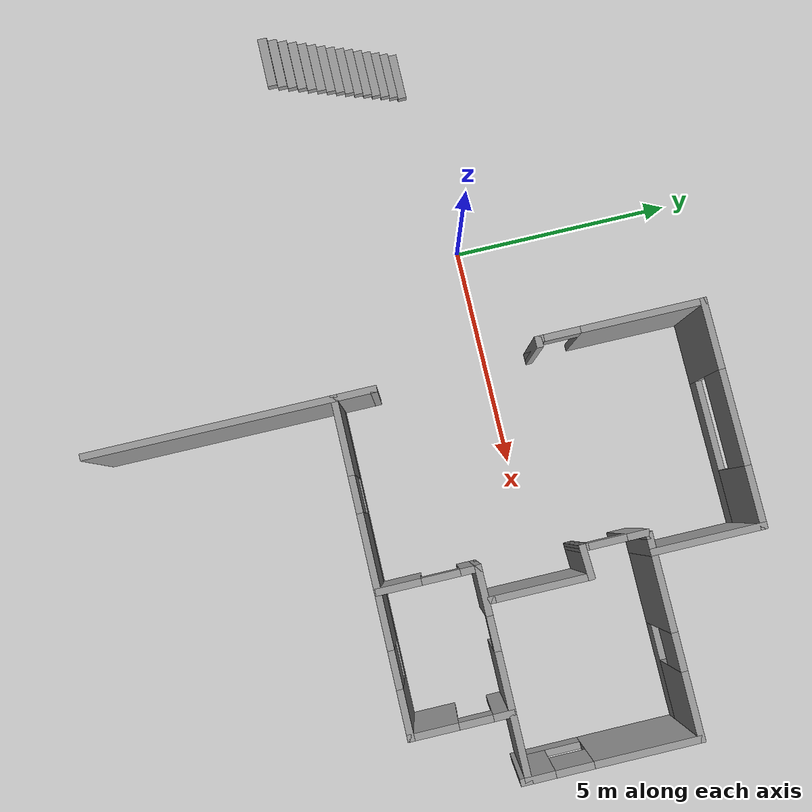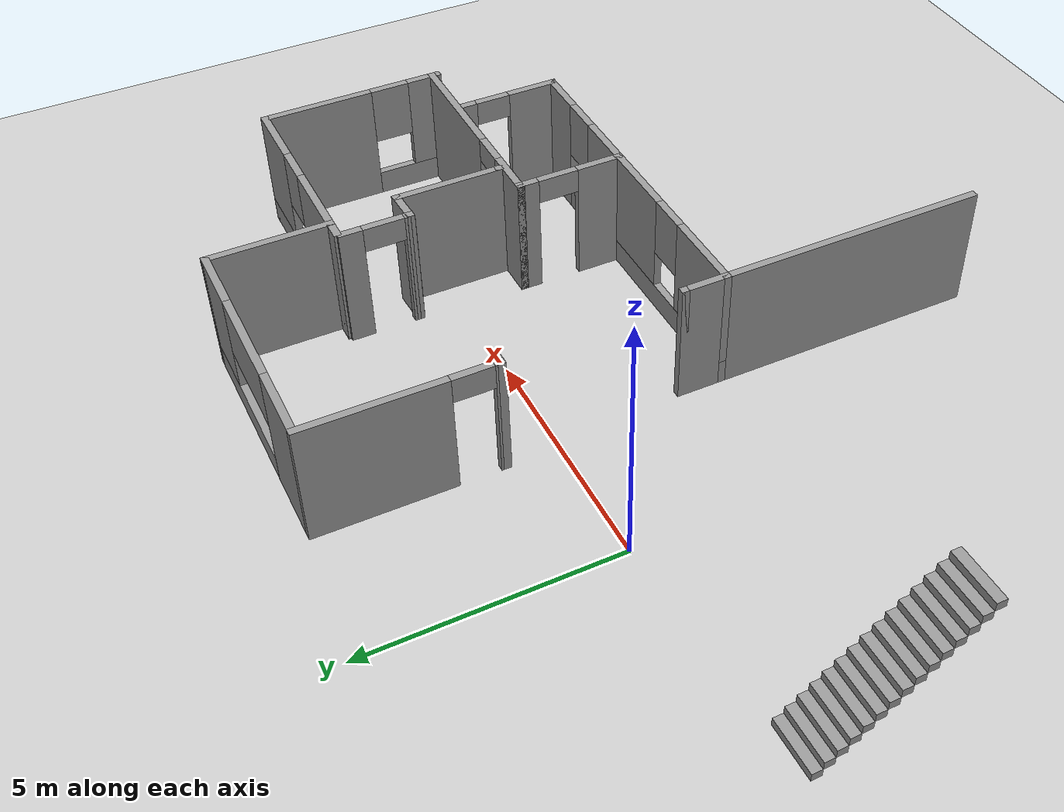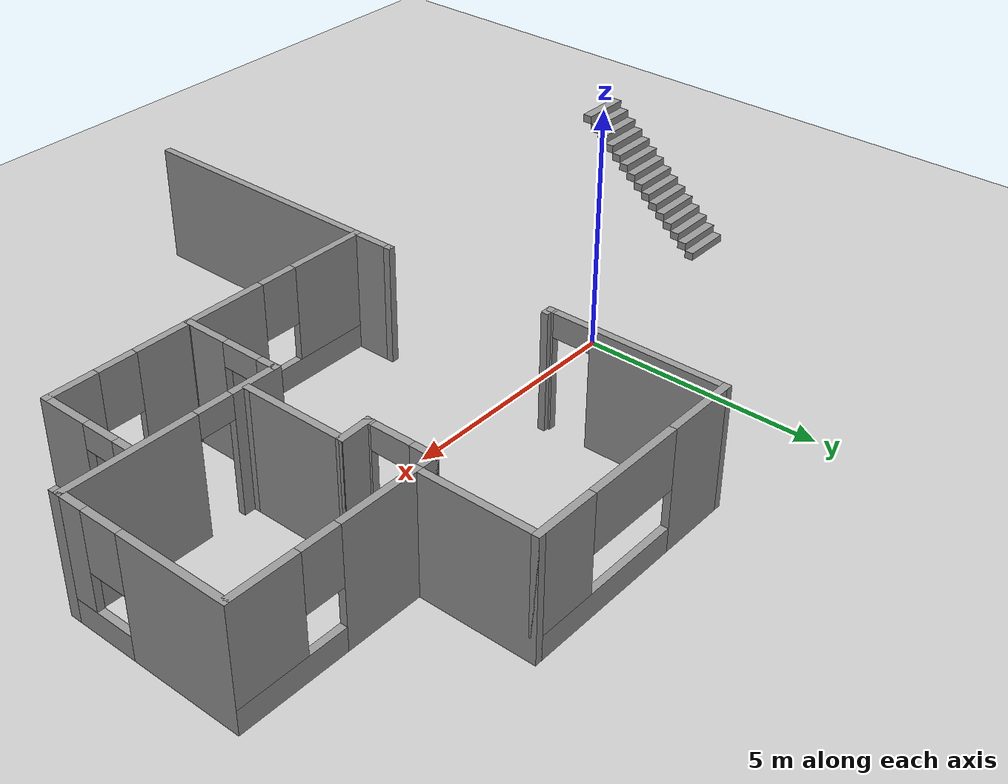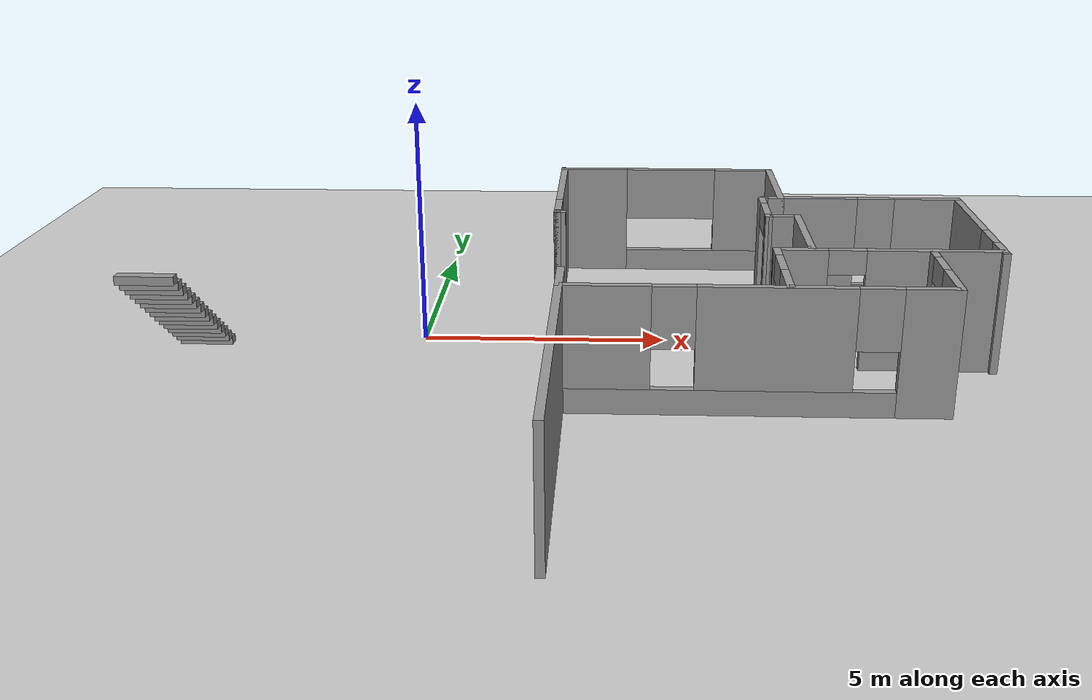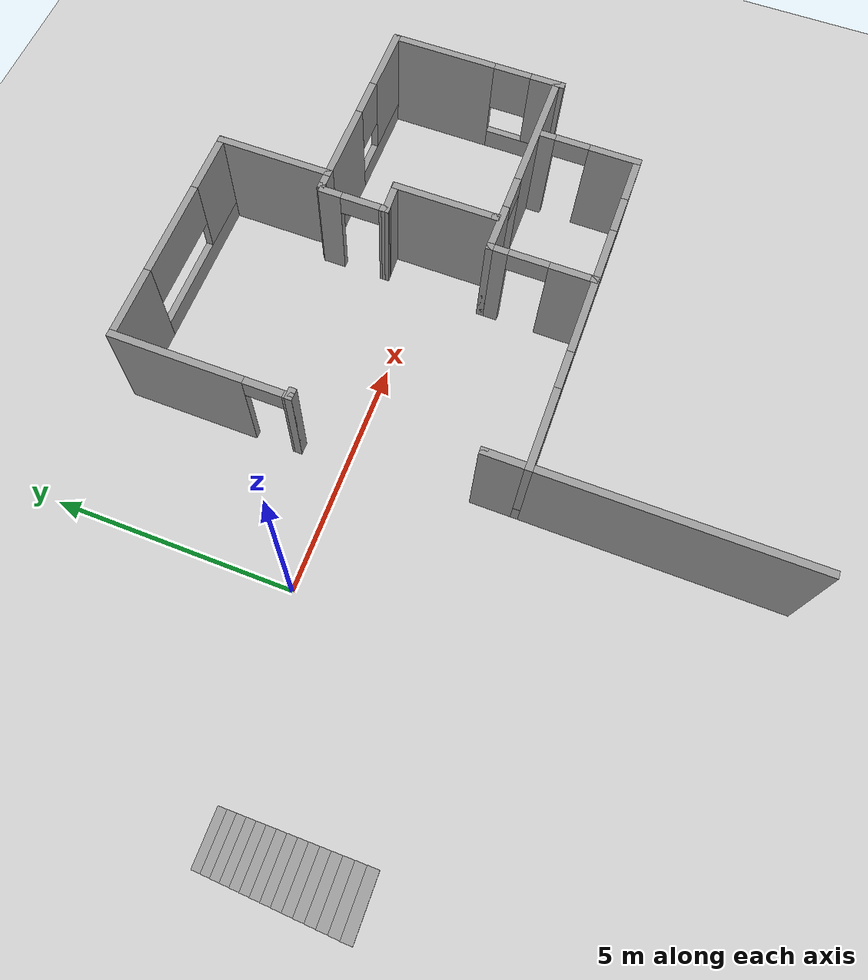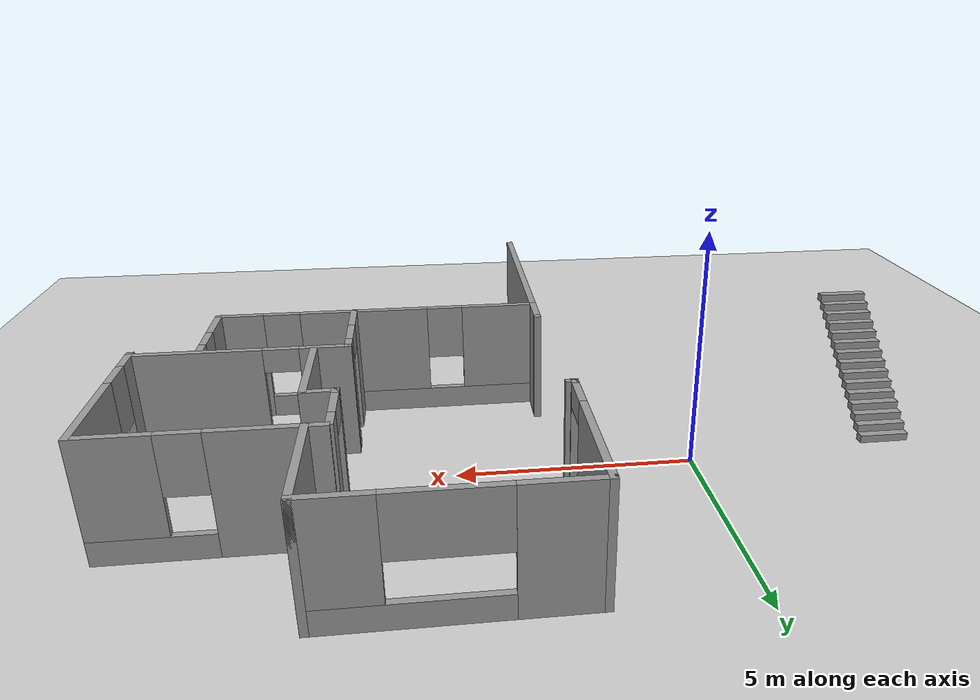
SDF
<sdf version="1.7">
 <world name="default">
  <model name="ground_plane">
   <static>1</static>
   <link name="link">
    <collision name="collision">
     <geometry><plane><normal>0 0 1</normal><size>100 100</size></plane></geometry>
     <surface>
      <contact><collide_bitmask>65535</collide_bitmask></contact>
      <friction><ode><mu>100</mu><mu2>50</mu2></ode></friction>
     </surface>
    </collision>
    <visual name="visual">
     <cast_shadows>0</cast_shadows>
     <geometry><plane><normal>0 0 1</normal><size>100 100</size></plane></geometry>
     <material>
      <script><uri>file://media/materials/scripts/gazebo.material</uri><name>Gazebo/Grey</name></script>
     </material>
    </visual>
   </link>
  </model>
  <model name="Floorplan5">
   <pose>0.817084 -1.82012 0 0 -0 0</pose>
   <link name="Stairs_0">
    <visual name="Stairs_0_Visual_0">
     <pose>-5.3338 1.40149 0.083333 0 -0 0</pose>
     <geometry><box><size>1.09051 0.202493 0.166667</size></box></geometry>
     <material>
      <script><uri>file://media/materials/scripts/gazebo.material</uri><name>Gazebo/Grey</name></script>
      <ambient>1 1 1 1</ambient>
     </material>
     <meta><layer>0</layer></meta>
    </visual>
    <collision name="Stairs_0_Collision_0">
     <geometry><box><size>1.09051 0.202493 0.166667</size></box></geometry>
     <pose>-5.3338 1.40149 0.083333 0 -0 0</pose>
    </collision>
    <visual name="Stairs_0_Visual_1">
     <pose>-5.3338 1.199 0.25 0 -0 0</pose>
     <geometry><box><size>1.09051 0.202493 0.166667</size></box></geometry>
     <material>
      <script><uri>file://media/materials/scripts/gazebo.material</uri><name>Gazebo/Grey</name></script>
      <ambient>1 1 1 1</ambient>
     </material>
     <meta><layer>0</layer></meta>
    </visual>
    <collision name="Stairs_0_Collision_1">
     <geometry><box><size>1.09051 0.202493 0.166667</size></box></geometry>
     <pose>-5.3338 1.199 0.25 0 -0 0</pose>
    </collision>
    <visual name="Stairs_0_Visual_2">
     <pose>-5.3338 0.996508 0.416667 0 -0 0</pose>
     <geometry><box><size>1.09051 0.202493 0.166667</size></box></geometry>
     <material>
      <script><uri>file://media/materials/scripts/gazebo.material</uri><name>Gazebo/Grey</name></script>
      <ambient>1 1 1 1</ambient>
     </material>
     <meta><layer>0</layer></meta>
    </visual>
    <collision name="Stairs_0_Collision_2">
     <geometry><box><size>1.09051 0.202493 0.166667</size></box></geometry>
     <pose>-5.3338 0.996508 0.416667 0 -0 0</pose>
    </collision>
    <visual name="Stairs_0_Visual_3">
     <pose>-5.3338 0.794015 0.583333 0 -0 0</pose>
     <geometry><box><size>1.09051 0.202493 0.166667</size></box></geometry>
     <material>
      <script><uri>file://media/materials/scripts/gazebo.material</uri><name>Gazebo/Grey</name></script>
      <ambient>1 1 1 1</ambient>
     </material>
     <meta><layer>0</layer></meta>
    </visual>
    <collision name="Stairs_0_Collision_3">
     <geometry><box><size>1.09051 0.202493 0.166667</size></box></geometry>
     <pose>-5.3338 0.794015 0.583333 0 -0 0</pose>
    </collision>
    <visual name="Stairs_0_Visual_4">
     <pose>-5.3338 0.591523 0.75 0 -0 0</pose>
     <geometry><box><size>1.09051 0.202493 0.166667</size></box></geometry>
     <material>
      <script><uri>file://media/materials/scripts/gazebo.material</uri><name>Gazebo/Grey</name></script>
      <ambient>1 1 1 1</ambient>
     </material>
     <meta><layer>0</layer></meta>
    </visual>
    <collision name="Stairs_0_Collision_4">
     <geometry><box><size>1.09051 0.202493 0.166667</size></box></geometry>
     <pose>-5.3338 0.591523 0.75 0 -0 0</pose>
    </collision>
    <visual name="Stairs_0_Visual_5">
     <pose>-5.3338 0.38903 0.916667 0 -0 0</pose>
     <geometry><box><size>1.09051 0.202493 0.166667</size></box></geometry>
     <material>
      <script><uri>file://media/materials/scripts/gazebo.material</uri><name>Gazebo/Grey</name></script>
      <ambient>1 1 1 1</ambient>
     </material>
     <meta><layer>0</layer></meta>
    </visual>
    <collision name="Stairs_0_Collision_5">
     <geometry><box><size>1.09051 0.202493 0.166667</size></box></geometry>
     <pose>-5.3338 0.38903 0.916667 0 -0 0</pose>
    </collision>
    <visual name="Stairs_0_Visual_6">
     <pose>-5.3338 0.186538 1.08333 0 -0 0</pose>
     <geometry><box><size>1.09051 0.202493 0.166667</size></box></geometry>
     <material>
      <script><uri>file://media/materials/scripts/gazebo.material</uri><name>Gazebo/Grey</name></script>
      <ambient>1 1 1 1</ambient>
     </material>
     <meta><layer>0</layer></meta>
    </visual>
    <collision name="Stairs_0_Collision_6">
     <geometry><box><size>1.09051 0.202493 0.166667</size></box></geometry>
     <pose>-5.3338 0.186538 1.08333 0 -0 0</pose>
    </collision>
    <visual name="Stairs_0_Visual_7">
     <pose>-5.3338 -0.015955 1.25 0 -0 0</pose>
     <geometry><box><size>1.09051 0.202493 0.166667</size></box></geometry>
     <material>
      <script><uri>file://media/materials/scripts/gazebo.material</uri><name>Gazebo/Grey</name></script>
      <ambient>1 1 1 1</ambient>
     </material>
     <meta><layer>0</layer></meta>
    </visual>
    <collision name="Stairs_0_Collision_7">
     <geometry><box><size>1.09051 0.202493 0.166667</size></box></geometry>
     <pose>-5.3338 -0.015955 1.25 0 -0 0</pose>
    </collision>
    <visual name="Stairs_0_Visual_8">
     <pose>-5.3338 -0.218447 1.41667 0 -0 0</pose>
     <geometry><box><size>1.09051 0.202493 0.166667</size></box></geometry>
     <material>
      <script><uri>file://media/materials/scripts/gazebo.material</uri><name>Gazebo/Grey</name></script>
      <ambient>1 1 1 1</ambient>
     </material>
     <meta><layer>0</layer></meta>
    </visual>
    <collision name="Stairs_0_Collision_8">
     <geometry><box><size>1.09051 0.202493 0.166667</size></box></geometry>
     <pose>-5.3338 -0.218447 1.41667 0 -0 0</pose>
    </collision>
    <visual name="Stairs_0_Visual_9">
     <pose>-5.3338 -0.42094 1.58333 0 -0 0</pose>
     <geometry><box><size>1.09051 0.202493 0.166667</size></box></geometry>
     <material>
      <script><uri>file://media/materials/scripts/gazebo.material</uri><name>Gazebo/Grey</name></script>
      <ambient>1 1 1 1</ambient>
     </material>
     <meta><layer>0</layer></meta>
    </visual>
    <collision name="Stairs_0_Collision_9">
     <geometry><box><size>1.09051 0.202493 0.166667</size></box></geometry>
     <pose>-5.3338 -0.42094 1.58333 0 -0 0</pose>
    </collision>
    <visual name="Stairs_0_Visual_10">
     <pose>-5.3338 -0.623432 1.75 0 -0 0</pose>
     <geometry><box><size>1.09051 0.202493 0.166667</size></box></geometry>
     <material>
      <script><uri>file://media/materials/scripts/gazebo.material</uri><name>Gazebo/Grey</name></script>
      <ambient>1 1 1 1</ambient>
     </material>
     <meta><layer>0</layer></meta>
    </visual>
    <collision name="Stairs_0_Collision_10">
     <geometry><box><size>1.09051 0.202493 0.166667</size></box></geometry>
     <pose>-5.3338 -0.623432 1.75 0 -0 0</pose>
    </collision>
    <visual name="Stairs_0_Visual_11">
     <pose>-5.3338 -0.825925 1.91667 0 -0 0</pose>
     <geometry><box><size>1.09051 0.202493 0.166667</size></box></geometry>
     <material>
      <script><uri>file://media/materials/scripts/gazebo.material</uri><name>Gazebo/Grey</name></script>
      <ambient>1 1 1 1</ambient>
     </material>
     <meta><layer>0</layer></meta>
    </visual>
    <collision name="Stairs_0_Collision_11">
     <geometry><box><size>1.09051 0.202493 0.166667</size></box></geometry>
     <pose>-5.3338 -0.825925 1.91667 0 -0 0</pose>
    </collision>
    <visual name="Stairs_0_Visual_12">
     <pose>-5.3338 -1.02842 2.08333 0 -0 0</pose>
     <geometry><box><size>1.09051 0.202493 0.166667</size></box></geometry>
     <material>
      <script><uri>file://media/materials/scripts/gazebo.material</uri><name>Gazebo/Grey</name></script>
      <ambient>1 1 1 1</ambient>
     </material>
     <meta><layer>0</layer></meta>
    </visual>
    <collision name="Stairs_0_Collision_12">
     <geometry><box><size>1.09051 0.202493 0.166667</size></box></geometry>
     <pose>-5.3338 -1.02842 2.08333 0 -0 0</pose>
    </collision>
    <visual name="Stairs_0_Visual_13">
     <pose>-5.3338 -1.23091 2.25 0 -0 0</pose>
     <geometry><box><size>1.09051 0.202493 0.166667</size></box></geometry>
     <material>
      <script><uri>file://media/materials/scripts/gazebo.material</uri><name>Gazebo/Grey</name></script>
      <ambient>1 1 1 1</ambient>
     </material>
     <meta><layer>0</layer></meta>
    </visual>
    <collision name="Stairs_0_Collision_13">
     <geometry><box><size>1.09051 0.202493 0.166667</size></box></geometry>
     <pose>-5.3338 -1.23091 2.25 0 -0 0</pose>
    </collision>
    <visual name="Stairs_0_Visual_14">
     <pose>-5.3338 -1.4334 2.41667 0 -0 0</pose>
     <geometry><box><size>1.09051 0.202493 0.166667</size></box></geometry>
     <material>
      <script><uri>file://media/materials/scripts/gazebo.material</uri><name>Gazebo/Grey</name></script>
      <ambient>1 1 1 1</ambient>
     </material>
     <meta><layer>0</layer></meta>
    </visual>
    <collision name="Stairs_0_Collision_14">
     <geometry><box><size>1.09051 0.202493 0.166667</size></box></geometry>
     <pose>-5.3338 -1.4334 2.41667 0 -0 0</pose>
    </collision>
   </link>
   <link name="Wall_13">
    <collision name="Wall_13_Collision">
     <geometry><box><size>0.25 0.15 2.5</size></box></geometry>
     <pose>0 0 1.25 0 -0 0</pose>
    </collision>
    <visual name="Wall_13_Visual">
     <pose>0 0 1.25 0 -0 0</pose>
     <geometry><box><size>0.25 0.15 2.5</size></box></geometry>
     <material>
      <script><uri>file://media/materials/scripts/gazebo.material</uri><name>Gazebo/Grey</name></script>
      <ambient>1 1 1 1</ambient>
     </material>
     <meta><layer>0</layer></meta>
    </visual>
    <pose>1.97349 2.83994 0 0 -0 0</pose>
   </link>
   <link name="Wall_15">
    <collision name="Wall_15_Collision">
     <geometry><box><size>0.15 0.15 2.5</size></box></geometry>
     <pose>0 0 1.25 0 -0 0</pose>
    </collision>
    <visual name="Wall_15_Visual">
     <pose>0 0 1.25 0 -0 0</pose>
     <geometry><box><size>0.15 0.15 2.5</size></box></geometry>
     <material>
      <script><uri>file://media/materials/scripts/gazebo.material</uri><name>Gazebo/Grey</name></script>
      <ambient>1 1 1 1</ambient>
     </material>
     <meta><layer>0</layer></meta>
    </visual>
    <pose>1.92349 2.83994 0 0 -0 0</pose>
   </link>
   <link name="Wall_17">
    <collision name="Wall_17_Collision">
     <geometry><box><size>0.15 0.15 2.5</size></box></geometry>
     <pose>0 0 1.25 0 -0 0</pose>
    </collision>
    <visual name="Wall_17_Visual">
     <pose>0 0 1.25 0 -0 0</pose>
     <geometry><box><size>0.15 0.15 2.5</size></box></geometry>
     <material>
      <script><uri>file://media/materials/scripts/gazebo.material</uri><name>Gazebo/Grey</name></script>
      <ambient>1 1 1 1</ambient>
     </material>
     <meta><layer>0</layer></meta>
    </visual>
    <pose>1.92349 2.83994 0 0 -0 0</pose>
   </link>
   <link name="Wall_19">
    <pose>1.92349 4.63994 0 0 -0 1.5708</pose>
    <visual name="Wall_19_Visual_0">
     <pose>-1.77755 0 1.25 0 -0 0</pose>
     <geometry><box><size>0.19489 0.15 2.5</size></box></geometry>
     <material>
      <script><uri>file://media/materials/scripts/gazebo.material</uri><name>Gazebo/Grey</name></script>
      <ambient>1 1 1 1</ambient>
     </material>
     <meta><layer>0</layer></meta>
    </visual>
    <collision name="Wall_19_Collision_0">
     <geometry><box><size>0.19489 0.15 2.5</size></box></geometry>
     <pose>-1.77755 0 1.25 0 -0 0</pose>
    </collision>
    <visual name="Wall_19_Visual_1">
     <pose>0.493912 0 1.25 0 -0 0</pose>
     <geometry><box><size>2.76218 0.15 2.5</size></box></geometry>
     <material>
      <script><uri>file://media/materials/scripts/gazebo.material</uri><name>Gazebo/Grey</name></script>
      <ambient>1 1 1 1</ambient>
     </material>
     <meta><layer>0</layer></meta>
    </visual>
    <collision name="Wall_19_Collision_1">
     <geometry><box><size>2.76218 0.15 2.5</size></box></geometry>
     <pose>0.493912 0 1.25 0 -0 0</pose>
    </collision>
    <visual name="Wall_19_Visual_2">
     <pose>-1.28364 0 2.25 0 -0 0</pose>
     <geometry><box><size>0.792934 0.15 0.5</size></box></geometry>
     <material>
      <script><uri>file://media/materials/scripts/gazebo.material</uri><name>Gazebo/Grey</name></script>
      <ambient>1 1 1 1</ambient>
     </material>
     <meta><layer>0</layer></meta>
    </visual>
    <collision name="Wall_19_Collision_2">
     <geometry><box><size>0.792934 0.15 0.5</size></box></geometry>
     <pose>-1.28364 0 2.25 0 -0 0</pose>
    </collision>
   </link>
   <link name="Wall_20">
    <pose>4.34849 6.43994 0 0 -0 0</pose>
    <visual name="Wall_20_Visual_0">
     <pose>-1.71644 0 1.25 0 -0 0</pose>
     <geometry><box><size>1.56712 0.15 2.5</size></box></geometry>
     <material>
      <script><uri>file://media/materials/scripts/gazebo.material</uri><name>Gazebo/Grey</name></script>
      <ambient>1 1 1 1</ambient>
     </material>
     <meta><layer>0</layer></meta>
    </visual>
    <collision name="Wall_20_Collision_0">
     <geometry><box><size>1.56712 0.15 2.5</size></box></geometry>
     <pose>-1.71644 0 1.25 0 -0 0</pose>
    </collision>
    <visual name="Wall_20_Visual_1">
     <pose>0.783562 0 0.25 0 -0 0</pose>
     <geometry><box><size>3.43288 0.15 0.5</size></box></geometry>
     <material>
      <script><uri>file://media/materials/scripts/gazebo.material</uri><name>Gazebo/Grey</name></script>
      <ambient>1 1 1 1</ambient>
     </material>
     <meta><layer>0</layer></meta>
    </visual>
    <collision name="Wall_20_Collision_1">
     <geometry><box><size>3.43288 0.15 0.5</size></box></geometry>
     <pose>0.783562 0 0.25 0 -0 0</pose>
    </collision>
    <visual name="Wall_20_Visual_2">
     <pose>1.82074 0 1.5 0 -0 0</pose>
     <geometry><box><size>1.35853 0.15 2</size></box></geometry>
     <material>
      <script><uri>file://media/materials/scripts/gazebo.material</uri><name>Gazebo/Grey</name></script>
      <ambient>1 1 1 1</ambient>
     </material>
     <meta><layer>0</layer></meta>
    </visual>
    <collision name="Wall_20_Collision_2">
     <geometry><box><size>1.35853 0.15 2</size></box></geometry>
     <pose>1.82074 0 1.5 0 -0 0</pose>
    </collision>
    <visual name="Wall_20_Visual_3">
     <pose>0.104299 0 1.9 0 -0 0</pose>
     <geometry><box><size>2.07435 0.15 1.2</size></box></geometry>
     <material>
      <script><uri>file://media/materials/scripts/gazebo.material</uri><name>Gazebo/Grey</name></script>
      <ambient>1 1 1 1</ambient>
     </material>
     <meta><layer>0</layer></meta>
    </visual>
    <collision name="Wall_20_Collision_3">
     <geometry><box><size>2.07435 0.15 1.2</size></box></geometry>
     <pose>0.104299 0 1.9 0 -0 0</pose>
    </collision>
   </link>
   <link name="Wall_21">
    <collision name="Wall_21_Collision">
     <geometry><box><size>2.5 0.15 2.5</size></box></geometry>
     <pose>0 0 1.25 0 -0 0</pose>
    </collision>
    <visual name="Wall_21_Visual">
     <pose>0 0 1.25 0 -0 0</pose>
     <geometry><box><size>2.5 0.15 2.5</size></box></geometry>
     <material>
      <script><uri>file://media/materials/scripts/gazebo.material</uri><name>Gazebo/Grey</name></script>
      <ambient>1 1 1 1</ambient>
     </material>
     <meta><layer>0</layer></meta>
    </visual>
    <pose>6.77349 5.26494 0 0 -0 -1.5708</pose>
   </link>
   <link name="Wall_22">
    <collision name="Wall_22_Collision">
     <geometry><box><size>0.5 0.15 2.5</size></box></geometry>
     <pose>0 0 1.25 0 -0 0</pose>
    </collision>
    <visual name="Wall_22_Visual">
     <pose>0 0 1.25 0 -0 0</pose>
     <geometry><box><size>0.5 0.15 2.5</size></box></geometry>
     <material>
      <script><uri>file://media/materials/scripts/gazebo.material</uri><name>Gazebo/Grey</name></script>
      <ambient>1 1 1 1</ambient>
     </material>
     <meta><layer>0</layer></meta>
    </visual>
    <pose>6.59849 4.08994 0 0 -0 3.14159</pose>
   </link>
   <link name="Wall_23">
    <collision name="Wall_23_Collision">
     <geometry><box><size>0.15 0.15 2.5</size></box></geometry>
     <pose>0 0 1.25 0 -0 0</pose>
    </collision>
    <visual name="Wall_23_Visual">
     <pose>0 0 1.25 0 -0 0</pose>
     <geometry><box><size>0.15 0.15 2.5</size></box></geometry>
     <material>
      <script><uri>file://media/materials/scripts/gazebo.material</uri><name>Gazebo/Grey</name></script>
      <ambient>1 1 1 1</ambient>
     </material>
     <meta><layer>0</layer></meta>
    </visual>
    <pose>6.42349 4.08994 0 0 -0 0</pose>
   </link>
   <link name="Wall_25">
    <pose>8.69849 4.08994 0 0 -0 0</pose>
    <visual name="Wall_25_Visual_0">
     <pose>-1.12359 0 1.25 0 -0 0</pose>
     <geometry><box><size>1.75281 0.15 2.5</size></box></geometry>
     <material>
      <script><uri>file://media/materials/scripts/gazebo.material</uri><name>Gazebo/Grey</name></script>
      <ambient>1 1 1 1</ambient>
     </material>
     <meta><layer>0</layer></meta>
    </visual>
    <collision name="Wall_25_Collision_0">
     <geometry><box><size>1.75281 0.15 2.5</size></box></geometry>
     <pose>-1.12359 0 1.25 0 -0 0</pose>
    </collision>
    <visual name="Wall_25_Visual_1">
     <pose>0.876405 0 0.25 0 -0 0</pose>
     <geometry><box><size>2.24719 0.15 0.5</size></box></geometry>
     <material>
      <script><uri>file://media/materials/scripts/gazebo.material</uri><name>Gazebo/Grey</name></script>
      <ambient>1 1 1 1</ambient>
     </material>
     <meta><layer>0</layer></meta>
    </visual>
    <collision name="Wall_25_Collision_1">
     <geometry><box><size>2.24719 0.15 0.5</size></box></geometry>
     <pose>0.876405 0 0.25 0 -0 0</pose>
    </collision>
    <visual name="Wall_25_Visual_2">
     <pose>1.27641 0 1.5 0 -0 0</pose>
     <geometry><box><size>1.44719 0.15 2</size></box></geometry>
     <material>
      <script><uri>file://media/materials/scripts/gazebo.material</uri><name>Gazebo/Grey</name></script>
      <ambient>1 1 1 1</ambient>
     </material>
     <meta><layer>0</layer></meta>
    </visual>
    <collision name="Wall_25_Collision_2">
     <geometry><box><size>1.44719 0.15 2</size></box></geometry>
     <pose>1.27641 0 1.5 0 -0 0</pose>
    </collision>
    <visual name="Wall_25_Visual_3">
     <pose>0.15281 0 1.9 0 -0 0</pose>
     <geometry><box><size>0.8 0.15 1.2</size></box></geometry>
     <material>
      <script><uri>file://media/materials/scripts/gazebo.material</uri><name>Gazebo/Grey</name></script>
      <ambient>1 1 1 1</ambient>
     </material>
     <meta><layer>0</layer></meta>
    </visual>
    <collision name="Wall_25_Collision_3">
     <geometry><box><size>0.8 0.15 1.2</size></box></geometry>
     <pose>0.15281 0 1.9 0 -0 0</pose>
    </collision>
   </link>
   <link name="Wall_26">
    <pose>10.6235 2.28994 0 0 -0 -1.5708</pose>
    <visual name="Wall_26_Visual_0">
     <pose>-0.720844 0 1.25 0 -0 0</pose>
     <geometry><box><size>2.30831 0.15 2.5</size></box></geometry>
     <material>
      <script><uri>file://media/materials/scripts/gazebo.material</uri><name>Gazebo/Grey</name></script>
      <ambient>1 1 1 1</ambient>
     </material>
     <meta><layer>0</layer></meta>
    </visual>
    <collision name="Wall_26_Collision_0">
     <geometry><box><size>2.30831 0.15 2.5</size></box></geometry>
     <pose>-0.720844 0 1.25 0 -0 0</pose>
    </collision>
    <visual name="Wall_26_Visual_1">
     <pose>1.15416 0 0.25 0 -0 0</pose>
     <geometry><box><size>1.44169 0.15 0.5</size></box></geometry>
     <material>
      <script><uri>file://media/materials/scripts/gazebo.material</uri><name>Gazebo/Grey</name></script>
      <ambient>1 1 1 1</ambient>
     </material>
     <meta><layer>0</layer></meta>
    </visual>
    <collision name="Wall_26_Collision_1">
     <geometry><box><size>1.44169 0.15 0.5</size></box></geometry>
     <pose>1.15416 0 0.25 0 -0 0</pose>
    </collision>
    <visual name="Wall_26_Visual_2">
     <pose>1.55416 0 1.5 0 -0 0</pose>
     <geometry><box><size>0.641688 0.15 2</size></box></geometry>
     <material>
      <script><uri>file://media/materials/scripts/gazebo.material</uri><name>Gazebo/Grey</name></script>
      <ambient>1 1 1 1</ambient>
     </material>
     <meta><layer>0</layer></meta>
    </visual>
    <collision name="Wall_26_Collision_2">
     <geometry><box><size>0.641688 0.15 2</size></box></geometry>
     <pose>1.55416 0 1.5 0 -0 0</pose>
    </collision>
    <visual name="Wall_26_Visual_3">
     <pose>0.833312 0 1.9 0 -0 0</pose>
     <geometry><box><size>0.8 0.15 1.2</size></box></geometry>
     <material>
      <script><uri>file://media/materials/scripts/gazebo.material</uri><name>Gazebo/Grey</name></script>
      <ambient>1 1 1 1</ambient>
     </material>
     <meta><layer>0</layer></meta>
    </visual>
    <collision name="Wall_26_Collision_3">
     <geometry><box><size>0.8 0.15 1.2</size></box></geometry>
     <pose>0.833312 0 1.9 0 -0 0</pose>
    </collision>
   </link>
   <link name="Wall_27">
    <collision name="Wall_27_Collision">
     <geometry><box><size>0.25 0.15 2.5</size></box></geometry>
     <pose>0 0 1.25 0 -0 0</pose>
    </collision>
    <visual name="Wall_27_Visual">
     <pose>0 0 1.25 0 -0 0</pose>
     <geometry><box><size>0.25 0.15 2.5</size></box></geometry>
     <material>
      <script><uri>file://media/materials/scripts/gazebo.material</uri><name>Gazebo/Grey</name></script>
      <ambient>1 1 1 1</ambient>
     </material>
     <meta><layer>0</layer></meta>
    </visual>
    <pose>10.6235 0.439942 0 0 -0 -1.5708</pose>
   </link>
   <link name="Wall_29">
    <pose>8.44849 0.489942 0 0 -0 3.14159</pose>
    <visual name="Wall_29_Visual_0">
     <pose>-0.899015 0 1.25 0 -0 0</pose>
     <geometry><box><size>2.70197 0.15 2.5</size></box></geometry>
     <material>
      <script><uri>file://media/materials/scripts/gazebo.material</uri><name>Gazebo/Grey</name></script>
      <ambient>1 1 1 1</ambient>
     </material>
     <meta><layer>0</layer></meta>
    </visual>
    <collision name="Wall_29_Collision_0">
     <geometry><box><size>2.70197 0.15 2.5</size></box></geometry>
     <pose>-0.899015 0 1.25 0 -0 0</pose>
    </collision>
    <visual name="Wall_29_Visual_1">
     <pose>1.71686 0 1.25 0 -0 0</pose>
     <geometry><box><size>1.06628 0.15 2.5</size></box></geometry>
     <material>
      <script><uri>file://media/materials/scripts/gazebo.material</uri><name>Gazebo/Grey</name></script>
      <ambient>1 1 1 1</ambient>
     </material>
     <meta><layer>0</layer></meta>
    </visual>
    <collision name="Wall_29_Collision_1">
     <geometry><box><size>1.06628 0.15 2.5</size></box></geometry>
     <pose>1.71686 0 1.25 0 -0 0</pose>
    </collision>
    <visual name="Wall_29_Visual_2">
     <pose>0.817847 0 2.25 0 -0 0</pose>
     <geometry><box><size>0.731754 0.15 0.5</size></box></geometry>
     <material>
      <script><uri>file://media/materials/scripts/gazebo.material</uri><name>Gazebo/Grey</name></script>
      <ambient>1 1 1 1</ambient>
     </material>
     <meta><layer>0</layer></meta>
    </visual>
    <collision name="Wall_29_Collision_2">
     <geometry><box><size>0.731754 0.15 0.5</size></box></geometry>
     <pose>0.817847 0 2.25 0 -0 0</pose>
    </collision>
   </link>
   <link name="Wall_30">
    <collision name="Wall_30_Collision">
     <geometry><box><size>0.15 0.15 2.5</size></box></geometry>
     <pose>0 0 1.25 0 -0 0</pose>
    </collision>
    <visual name="Wall_30_Visual">
     <pose>0 0 1.25 0 -0 0</pose>
     <geometry><box><size>0.15 0.15 2.5</size></box></geometry>
     <material>
      <script><uri>file://media/materials/scripts/gazebo.material</uri><name>Gazebo/Grey</name></script>
      <ambient>1 1 1 1</ambient>
     </material>
     <meta><layer>0</layer></meta>
    </visual>
    <pose>6.27349 0.489942 0 0 -0 0</pose>
   </link>
   <link name="Wall_32">
    <pose>6.36151 3.36099 0 0 -0 -1.5708</pose>
    <visual name="Wall_32_Visual_0">
     <pose>-0.510408 0 1.25 0 -0 0</pose>
     <geometry><box><size>0.479183 0.15 2.5</size></box></geometry>
     <material>
      <script><uri>file://media/materials/scripts/gazebo.material</uri><name>Gazebo/Grey</name></script>
      <ambient>1 1 1 1</ambient>
     </material>
     <meta><layer>0</layer></meta>
    </visual>
    <collision name="Wall_32_Collision_0">
     <geometry><box><size>0.479183 0.15 2.5</size></box></geometry>
     <pose>-0.510408 0 1.25 0 -0 0</pose>
    </collision>
    <visual name="Wall_32_Visual_1">
     <pose>0.650239 0 1.25 0 -0 0</pose>
     <geometry><box><size>0.199522 0.15 2.5</size></box></geometry>
     <material>
      <script><uri>file://media/materials/scripts/gazebo.material</uri><name>Gazebo/Grey</name></script>
      <ambient>1 1 1 1</ambient>
     </material>
     <meta><layer>0</layer></meta>
    </visual>
    <collision name="Wall_32_Collision_1">
     <geometry><box><size>0.199522 0.15 2.5</size></box></geometry>
     <pose>0.650239 0 1.25 0 -0 0</pose>
    </collision>
    <visual name="Wall_32_Visual_2">
     <pose>0.139831 0 2.25 0 -0 0</pose>
     <geometry><box><size>0.821295 0.15 0.5</size></box></geometry>
     <material>
      <script><uri>file://media/materials/scripts/gazebo.material</uri><name>Gazebo/Grey</name></script>
      <ambient>1 1 1 1</ambient>
     </material>
     <meta><layer>0</layer></meta>
    </visual>
    <collision name="Wall_32_Collision_2">
     <geometry><box><size>0.821295 0.15 0.5</size></box></geometry>
     <pose>0.139831 0 2.25 0 -0 0</pose>
    </collision>
   </link>
   <link name="Wall_33">
    <collision name="Wall_33_Collision">
     <geometry><box><size>0.75 0.15 2.5</size></box></geometry>
     <pose>0 0 1.25 0 -0 0</pose>
    </collision>
    <visual name="Wall_33_Visual">
     <pose>0 0 1.25 0 -0 0</pose>
     <geometry><box><size>0.75 0.15 2.5</size></box></geometry>
     <material>
      <script><uri>file://media/materials/scripts/gazebo.material</uri><name>Gazebo/Grey</name></script>
      <ambient>1 1 1 1</ambient>
     </material>
     <meta><layer>0</layer></meta>
    </visual>
    <pose>6.66151 2.69929 0 0 -0 0.044305</pose>
   </link>
   <link name="Wall_34">
    <collision name="Wall_34_Collision">
     <geometry><box><size>2.25 0.15 2.5</size></box></geometry>
     <pose>0 0 1.25 0 -0 0</pose>
    </collision>
    <visual name="Wall_34_Visual">
     <pose>0 0 1.25 0 -0 0</pose>
     <geometry><box><size>2.25 0.15 2.5</size></box></geometry>
     <material>
      <script><uri>file://media/materials/scripts/gazebo.material</uri><name>Gazebo/Grey</name></script>
      <ambient>1 1 1 1</ambient>
     </material>
     <meta><layer>0</layer></meta>
    </visual>
    <pose>6.96151 1.64929 0 0 -0 -1.5708</pose>
   </link>
   <link name="Wall_35">
    <collision name="Wall_35_Collision">
     <geometry><box><size>0.15 0.15 2.5</size></box></geometry>
     <pose>0 0 1.25 0 -0 0</pose>
    </collision>
    <visual name="Wall_35_Visual">
     <pose>0 0 1.25 0 -0 0</pose>
     <geometry><box><size>0.15 0.15 2.5</size></box></geometry>
     <material>
      <script><uri>file://media/materials/scripts/gazebo.material</uri><name>Gazebo/Grey</name></script>
      <ambient>1 1 1 1</ambient>
     </material>
     <meta><layer>0</layer></meta>
    </visual>
    <pose>6.96151 0.612589 0 0 -0 0</pose>
   </link>
   <link name="Wall_37">
    <pose>9.26256 -0.585315 0 0 -0 -1.5708</pose>
    <visual name="Wall_37_Visual_0">
     <pose>-0.899951 0 1.25 0 -0 0</pose>
     <geometry><box><size>0.450099 0.15 2.5</size></box></geometry>
     <material>
      <script><uri>file://media/materials/scripts/gazebo.material</uri><name>Gazebo/Grey</name></script>
      <ambient>1 1 1 1</ambient>
     </material>
     <meta><layer>0</layer></meta>
    </visual>
    <collision name="Wall_37_Collision_0">
     <geometry><box><size>0.450099 0.15 2.5</size></box></geometry>
     <pose>-0.899951 0 1.25 0 -0 0</pose>
    </collision>
    <visual name="Wall_37_Visual_1">
     <pose>0.583279 0 1.25 0 -0 0</pose>
     <geometry><box><size>1.08344 0.15 2.5</size></box></geometry>
     <material>
      <script><uri>file://media/materials/scripts/gazebo.material</uri><name>Gazebo/Grey</name></script>
      <ambient>1 1 1 1</ambient>
     </material>
     <meta><layer>0</layer></meta>
    </visual>
    <collision name="Wall_37_Collision_1">
     <geometry><box><size>1.08344 0.15 2.5</size></box></geometry>
     <pose>0.583279 0 1.25 0 -0 0</pose>
    </collision>
    <visual name="Wall_37_Visual_2">
     <pose>-0.316672 0 2.25 0 -0 0</pose>
     <geometry><box><size>0.716459 0.15 0.5</size></box></geometry>
     <material>
      <script><uri>file://media/materials/scripts/gazebo.material</uri><name>Gazebo/Grey</name></script>
      <ambient>1 1 1 1</ambient>
     </material>
     <meta><layer>0</layer></meta>
    </visual>
    <collision name="Wall_37_Collision_2">
     <geometry><box><size>0.716459 0.15 0.5</size></box></geometry>
     <pose>-0.316672 0 2.25 0 -0 0</pose>
    </collision>
   </link>
   <link name="Wall_38">
    <pose>5.71256 -1.63532 0 0 -0 3.14159</pose>
    <visual name="Wall_38_Visual_0">
     <pose>-3.0964 0 1.25 0 -0 0</pose>
     <geometry><box><size>1.05719 0.15 2.5</size></box></geometry>
     <material>
      <script><uri>file://media/materials/scripts/gazebo.material</uri><name>Gazebo/Grey</name></script>
      <ambient>1 1 1 1</ambient>
     </material>
     <meta><layer>0</layer></meta>
    </visual>
    <collision name="Wall_38_Collision_0">
     <geometry><box><size>1.05719 0.15 2.5</size></box></geometry>
     <pose>-3.0964 0 1.25 0 -0 0</pose>
    </collision>
    <visual name="Wall_38_Visual_1">
     <pose>0.528596 0 0.25 0 -0 0</pose>
     <geometry><box><size>6.19281 0.15 0.5</size></box></geometry>
     <material>
      <script><uri>file://media/materials/scripts/gazebo.material</uri><name>Gazebo/Grey</name></script>
      <ambient>1 1 1 1</ambient>
     </material>
     <meta><layer>0</layer></meta>
    </visual>
    <collision name="Wall_38_Collision_1">
     <geometry><box><size>6.19281 0.15 0.5</size></box></geometry>
     <pose>0.528596 0 0.25 0 -0 0</pose>
    </collision>
    <visual name="Wall_38_Visual_2">
     <pose>-0.337194 0 1.5 0 -0 0</pose>
     <geometry><box><size>2.86123 0.15 2</size></box></geometry>
     <material>
      <script><uri>file://media/materials/scripts/gazebo.material</uri><name>Gazebo/Grey</name></script>
      <ambient>1 1 1 1</ambient>
     </material>
     <meta><layer>0</layer></meta>
    </visual>
    <collision name="Wall_38_Collision_2">
     <geometry><box><size>2.86123 0.15 2</size></box></geometry>
     <pose>-0.337194 0 1.5 0 -0 0</pose>
    </collision>
    <visual name="Wall_38_Visual_3">
     <pose>2.75921 0 1.5 0 -0 0</pose>
     <geometry><box><size>1.73158 0.15 2</size></box></geometry>
     <material>
      <script><uri>file://media/materials/scripts/gazebo.material</uri><name>Gazebo/Grey</name></script>
      <ambient>1 1 1 1</ambient>
     </material>
     <meta><layer>0</layer></meta>
    </visual>
    <collision name="Wall_38_Collision_3">
     <geometry><box><size>1.73158 0.15 2</size></box></geometry>
     <pose>2.75921 0 1.5 0 -0 0</pose>
    </collision>
    <visual name="Wall_38_Visual_4">
     <pose>-2.16781 0 1.9 0 -0 0</pose>
     <geometry><box><size>0.8 0.15 1.2</size></box></geometry>
     <material>
      <script><uri>file://media/materials/scripts/gazebo.material</uri><name>Gazebo/Grey</name></script>
      <ambient>1 1 1 1</ambient>
     </material>
     <meta><layer>0</layer></meta>
    </visual>
    <collision name="Wall_38_Collision_4">
     <geometry><box><size>0.8 0.15 1.2</size></box></geometry>
     <pose>-2.16781 0 1.9 0 -0 0</pose>
    </collision>
    <visual name="Wall_38_Visual_5">
     <pose>1.49342 0 1.9 0 -0 0</pose>
     <geometry><box><size>0.8 0.15 1.2</size></box></geometry>
     <material>
      <script><uri>file://media/materials/scripts/gazebo.material</uri><name>Gazebo/Grey</name></script>
      <ambient>1 1 1 1</ambient>
     </material>
     <meta><layer>0</layer></meta>
    </visual>
    <collision name="Wall_38_Collision_5">
     <geometry><box><size>0.8 0.15 1.2</size></box></geometry>
     <pose>1.49342 0 1.9 0 -0 0</pose>
    </collision>
   </link>
   <link name="Wall_39">
    <collision name="Wall_39_Collision">
     <geometry><box><size>1 0.15 2.5</size></box></geometry>
     <pose>0 0 1.25 0 -0 0</pose>
    </collision>
    <visual name="Wall_39_Visual">
     <pose>0 0 1.25 0 -0 0</pose>
     <geometry><box><size>1 0.15 2.5</size></box></geometry>
     <material>
      <script><uri>file://media/materials/scripts/gazebo.material</uri><name>Gazebo/Grey</name></script>
      <ambient>1 1 1 1</ambient>
     </material>
     <meta><layer>0</layer></meta>
    </visual>
    <pose>2.16256 -1.21032 0 0 -0 1.5708</pose>
   </link>
   <link name="Wall_40">
    <collision name="Wall_40_Collision">
     <geometry><box><size>0.15 0.15 2.5</size></box></geometry>
     <pose>0 0 1.25 0 -0 0</pose>
    </collision>
    <visual name="Wall_40_Visual">
     <pose>0 0 1.25 0 -0 0</pose>
     <geometry><box><size>0.15 0.15 2.5</size></box></geometry>
     <material>
      <script><uri>file://media/materials/scripts/gazebo.material</uri><name>Gazebo/Grey</name></script>
      <ambient>1 1 1 1</ambient>
     </material>
     <meta><layer>0</layer></meta>
    </visual>
    <pose>2.16256 -0.785315 0 0 -0 0</pose>
   </link>
   <link name="Wall_42">
    <collision name="Wall_42_Collision">
     <geometry><box><size>5.5 0.15 2.5</size></box></geometry>
     <pose>0 0 1.25 0 -0 0</pose>
    </collision>
    <visual name="Wall_42_Visual">
     <pose>0 0 1.25 0 -0 0</pose>
     <geometry><box><size>5.5 0.15 2.5</size></box></geometry>
     <material>
      <script><uri>file://media/materials/scripts/gazebo.material</uri><name>Gazebo/Grey</name></script>
      <ambient>1 1 1 1</ambient>
     </material>
     <meta><layer>0</layer></meta>
    </visual>
    <pose>2.16256 -4.31032 0 0 -0 -1.5708</pose>
   </link>
   <link name="Wall_46">
    <pose>6.27349 -0.560058 0 0 -0 -1.5708</pose>
    <visual name="Wall_46_Visual_0">
     <pose>-0.898794 0 1.25 0 -0 0</pose>
     <geometry><box><size>0.452413 0.15 2.5</size></box></geometry>
     <material>
      <script><uri>file://media/materials/scripts/gazebo.material</uri><name>Gazebo/Grey</name></script>
      <ambient>1 1 1 1</ambient>
     </material>
     <meta><layer>0</layer></meta>
    </visual>
    <collision name="Wall_46_Collision_0">
     <geometry><box><size>0.452413 0.15 2.5</size></box></geometry>
     <pose>-0.898794 0 1.25 0 -0 0</pose>
    </collision>
    <visual name="Wall_46_Visual_1">
     <pose>0.637969 0 1.25 0 -0 0</pose>
     <geometry><box><size>0.974063 0.15 2.5</size></box></geometry>
     <material>
      <script><uri>file://media/materials/scripts/gazebo.material</uri><name>Gazebo/Grey</name></script>
      <ambient>1 1 1 1</ambient>
     </material>
     <meta><layer>0</layer></meta>
    </visual>
    <collision name="Wall_46_Collision_1">
     <geometry><box><size>0.974063 0.15 2.5</size></box></geometry>
     <pose>0.637969 0 1.25 0 -0 0</pose>
    </collision>
    <visual name="Wall_46_Visual_2">
     <pose>-0.260825 0 2.25 0 -0 0</pose>
     <geometry><box><size>0.823524 0.15 0.5</size></box></geometry>
     <material>
      <script><uri>file://media/materials/scripts/gazebo.material</uri><name>Gazebo/Grey</name></script>
      <ambient>1 1 1 1</ambient>
     </material>
     <meta><layer>0</layer></meta>
    </visual>
    <collision name="Wall_46_Collision_2">
     <geometry><box><size>0.823524 0.15 0.5</size></box></geometry>
     <pose>-0.260825 0 2.25 0 -0 0</pose>
    </collision>
   </link>
   <link name="Wall_47">
    <collision name="Wall_47_Collision">
     <geometry><box><size>0.15 0.15 2.5</size></box></geometry>
     <pose>0 0 1.25 0 -0 0</pose>
    </collision>
    <visual name="Wall_47_Visual">
     <pose>0 0 1.25 0 -0 0</pose>
     <geometry><box><size>0.15 0.15 2.5</size></box></geometry>
     <material>
      <script><uri>file://media/materials/scripts/gazebo.material</uri><name>Gazebo/Grey</name></script>
      <ambient>1 1 1 1</ambient>
     </material>
     <meta><layer>0</layer></meta>
    </visual>
    <pose>6.27349 -1.61006 0 0 -0 0</pose>
   </link>
   <static>1</static>
  </model>
 </world>
</sdf>
